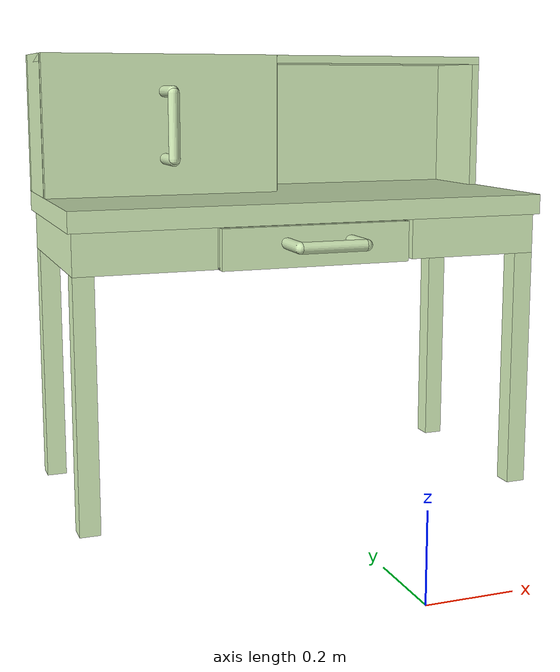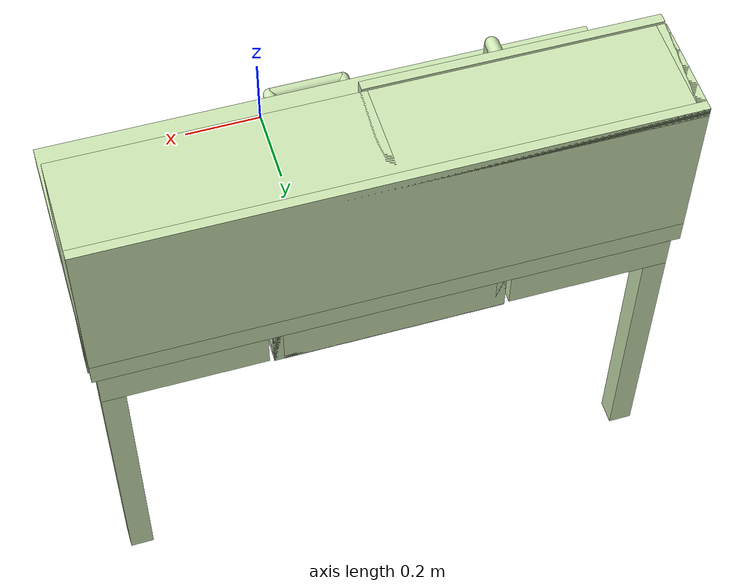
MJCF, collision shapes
<?xml version="1.0"?>
<mujoco model="franka_desk">
  <compiler angle="radian"/>
  <size njmax="2000" nconmax="2000"/>
  <option timestep="0.002"/>
  <compiler angle="radian"/>
  <asset>
    <texture name="plane_texture" type="2d" height="1" width="1" file="textures/white_marble_tile.png"/>
    <material name="plane_material" reflectance="0.05" texture="plane_texture" texrepeat="4 4" texuniform="true"/>
    <!-- Desk meshes -->
    <mesh name="desk_main" file="meshes/desk_main.stl" scale="0.01 0.01 0.01"/>
    <mesh name="desk_slide_wood" file="meshes/desk_slide_wood.stl" scale="0.01 0.01 0.01"/>
    <mesh name="desk_slide_handle" file="meshes/desk_slide_handle.stl" scale="0.01 0.01 0.01"/>
    <mesh name="desk_drawer_wood" file="meshes/desk_drawer_wood.stl" scale="0.01 0.01 0.01"/>
    <mesh name="desk_drawer_handle" file="meshes/desk_drawer_handle.stl" scale="0.01 0.01 0.01"/>
    <texture name="desk_wood_texture" type="cube" height="1" width="1" file="textures/wood.png"/>
    <texture name="desk_metal_texture" type="cube" height="1" width="1" file="textures/metal.png"/>
    <material name="desk_wood_material" texture="desk_wood_texture" rgba="0.8 0.8 0.8 1" shininess="0.2" reflectance="0.3" texuniform="false"/>
    <material name="desk_metal_material" texture="desk_metal_texture" texrepeat="3 3" reflectance="0.7" texuniform="false"/>
  </asset>
  <default>
    <!-- Desk default classes -->
    <default class="desk_metal">
      <geom group="1" contype="0" conaffinity="0" type="mesh" material="desk_metal_material"/>
    </default>
    <default class="desk_wood">
      <geom group="1" contype="0" conaffinity="0" type="mesh" material="desk_wood_material"/>
    </default>
    <default class="desk_drawer">
      <geom contype="1" conaffinity="1" group="3" rgba="1 0 0 1"/>
      <joint limited="true" damping="2" frictionloss="5" armature="0.1"/>
    </default>
    <default class="desk_body">
      <geom contype="1" conaffinity="1" group="4" rgba="0 1 0 1"/>
      <joint limited="true" damping="1" frictionloss="0.5" armature=".01"/>
    </default>
  </default>
  <worldbody>
    <!-- Desk -->
    <body pos="0 0.85 0">
      <!-- Main -->
      <body name="desk" pos="0 0 0" childclass="desk_body">
        <geom class="desk_wood" type="mesh" mesh="desk_main" quat="0. 0. 0.707107 0.707107" rgba="2.0 2.0 2.0 1.0"/>
        <geom type="box" size=".6 .275 .025" pos="0 0 0.735" rgba="0.8 0.9 0.7 1.0" mass="40"/>
        <geom type="box" size="0.17 0.26 .05" pos="0.42 0 0.66" rgba="0.8 0.9 0.7 1.0"/>
        <geom type="box" size="0.17 0.26 .05" pos="-0.42 0 0.66" rgba="0.8 0.9 0.7 1.0"/>
        <geom type="box" size="0.025 0.025 0.305" pos="-0.565 0.235 0.305" rgba="0.8 0.9 0.7 1.0"/>
        <geom type="box" size="0.025 0.025 0.305" pos="-0.565 -0.235 0.305" rgba="0.8 0.9 0.7 1.0"/>
        <geom type="box" size="0.025 0.025 0.305" pos="0.565 0.235 0.305" rgba="0.8 0.9 0.7 1.0"/>
        <geom type="box" size="0.025 0.025 0.305" pos="0.565 -0.235 0.305" rgba="0.8 0.9 0.7 1.0"/>
        <geom type="box" size="0.6 0.01 0.175" pos="0 0.265 0.935" rgba="0.8 0.9 0.7 1.0"/>
        <geom type="box" size="0.6 0.11 0.01" pos="0 0.165 1.1" rgba="0.8 0.9 0.7 1.0"/>
        <geom type="box" size="0.01 0.11 0.175" pos="0.59 .165 .935" rgba="0.8 0.9 0.7 1.0"/>
        <geom type="box" size="0.01 0.11 0.175" pos="-0.59 .165 .935" rgba="0.8 0.9 0.7 1.0"/>
        <geom type="box" size="0.01 0.11 0.175" pos="0 .165 .935" rgba="0.8 0.9 0.7 1.0"/>
      </body>
      <!-- Drawer -->
      <body name="drawer" pos="0 0 0.655" childclass="desk_drawer">
        <geom class="desk_wood" type="mesh" mesh="desk_drawer_wood" quat="0. 0. 0.707107 0.707107" rgba="0.4 0.4 0.4 1.0"/>
        <geom name="drawer_handle" class="desk_metal" type="mesh" mesh="desk_drawer_handle" quat="0. 0. 0.707107 0.707107"/>
        <geom type="box" size=".24 .26 .01" pos="0 0 -0.04" rgba="1.0 1.0 1.0 1.0" mass="2"/>
        <geom type="box" size=".24 .01 .05" pos="0 .25 0" rgba="0.8 0.9 0.7 1.0"/>
        <geom type="box" size=".24 .01 .05" pos="0 -.25 0" rgba="0.8 0.9 0.7 1.0"/>
        <geom type="box" size=".01 .26 .05" pos="-.23 0 0" rgba="0.8 0.9 0.7 1.0"/>
        <geom type="box" size=".01 .26 .05" pos=".23 0 0" rgba="0.8 0.9 0.7 1.0"/>
        <geom type="capsule" size=".014 .045" pos=".08203 -.315 .01" quat="0.707107 0.707107 0. 0." rgba="0.8 0.9 0.7 1.0"/>
        <geom type="capsule" size=".014 .045" pos="-.08203 -.315 .01" quat="0.707107 0.707107 0. 0." rgba="0.8 0.9 0.7 1.0"/>
        <geom type="capsule" size=".014 .08" pos="0 -.36 .01" quat="0.707107 0. 0.707107 0." rgba="0.8 0.9 0.7 1.0"/>
        <joint name="drawer_joint" type="slide" pos="0 0 0" axis="0 1 0" limited="true" range="-0.48 0"/>
      </body>
      <!-- Slide -->
      <body name="slide" pos="-0.3 0.04 0.935" childclass="desk_drawer">
        <geom class="desk_wood" type="mesh" mesh="desk_slide_wood" quat="0. 0. 0.707107 0.707107" rgba="0.4 0.4 0.4 1.0"/>
        <geom name="desk_slide_handle" class="desk_metal" type="mesh" mesh="desk_slide_handle" quat="0. 0. 0.707107 0.707107"/>
        <geom type="box" size=".3 .01 .175" pos="0 0 0" rgba="0.8 0.9 0.7 1.0" mass="1"/>
        <geom type="capsule" size=".014 .042" pos="0 -.065 .08302" euler="1.57 0 0" rgba="0.8 0.9 0.7 1.0"/>
        <geom type="capsule" size=".014 .042" pos="0 -.065 -.08302" euler="1.57 0 0" rgba="0.8 0.9 0.7 1.0"/>
        <geom type="capsule" size=".014 .08" pos="0 -.11 0" euler="0 0 0" rgba="0.8 0.9 0.7 1.0"/>
        <site name="slide_handle" type="sphere" size=".01" pos="0 -.11 0"/>
        <joint name="slide_joint" type="slide" pos="0 0 0" axis="1 0 0" limited="true" range="0 .6"/>
      </body>
    </body>
  </worldbody>
</mujoco>
